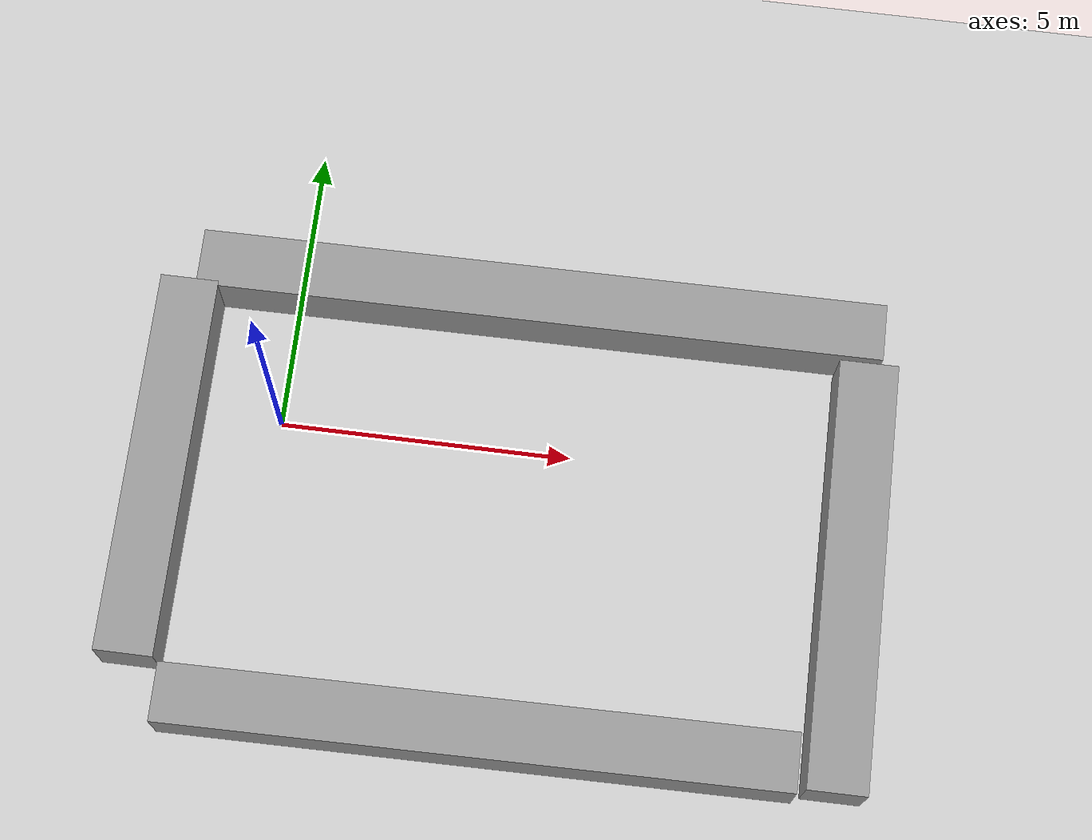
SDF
<sdf version="1.6">
 <world name="default">
  <light name="sun" type="directional">
   <pose>0 0 10 0 -0 0</pose>
   <diffuse>0.8 0.8 0.8 1</diffuse>
   <specular>0.2 0.2 0.2 1</specular>
   <attenuation>
    <range>1000</range>
    <constant>0.9</constant>
    <linear>0.01</linear>
    <quadratic>0.001</quadratic>
   </attenuation>
   <direction>-0.5 0.1 -0.9</direction>
  </light>
  <model name="ground_plane">
   <static>1</static>
   <link name="link">
    <collision name="collision">
     <geometry><plane><normal>0 0 1</normal><size>100 100</size></plane></geometry>
     <surface>
      <contact><collide_bitmask>65535</collide_bitmask></contact>
      <friction><ode><mu>100</mu><mu2>50</mu2></ode></friction>
     </surface>
    </collision>
    <visual name="visual">
     <cast_shadows>0</cast_shadows>
     <geometry><plane><normal>0 0 1</normal><size>100 100</size></plane></geometry>
     <material>
      <script><uri>file://media/materials/scripts/gazebo.material</uri><name>Gazebo/Grey</name></script>
     </material>
    </visual>
   </link>
  </model>
  <gravity>0 0 -9.8</gravity>
  <magnetic_field>6e-06 2.3e-05 -4.2e-05</magnetic_field>
  <atmosphere type="adiabatic"/>
  <physics name="default_physics" default="0" type="ode">
   <max_step_size>0.001</max_step_size>
   <real_time_factor>1</real_time_factor>
   <real_time_update_rate>1000</real_time_update_rate>
  </physics>
  <scene><ambient>0.4 0.4 0.4 1</ambient><background>0.7 0.7 0.7 1</background><shadows>1</shadows></scene>
  <audio><device>default</device></audio>
  <spherical_coordinates>
   <surface_model>EARTH_WGS84</surface_model>
   <latitude_deg>0</latitude_deg>
   <longitude_deg>0</longitude_deg>
   <elevation>0</elevation>
   <heading_deg>0</heading_deg>
  </spherical_coordinates>
  <model name="unit_box_0">
   <link name="link">
    <inertial>
     <mass>999</mass>
     <inertia><ixx>166.5</ixx><ixy>0</ixy><ixz>0</ixz><iyy>9287.28</iyy><iyz>0</iyz><izz>9287.28</izz></inertia>
    </inertial>
    <visual name="visual">
     <geometry><box><size>10.5147 1 1</size></box></geometry>
     <material>
      <script><name>Gazebo/Grey</name><uri>file://media/materials/scripts/gazebo.material</uri></script>
      <shader type="vertex"><normal_map>__default__</normal_map></shader>
      <ambient>0.3 0.3 0.3 1</ambient>
      <diffuse>0.7 0.7 0.7 1</diffuse>
      <specular>0.01 0.01 0.01 1</specular>
      <emissive>0 0 0 1</emissive>
     </material>
    </visual>
    <collision name="collision">
     <geometry><box><size>10.5147 1 1</size></box></geometry>
     <surface>
      <friction>
       <ode><mu>1</mu><mu2>1</mu2><fdir1>0 0 0</fdir1><slip1>0</slip1><slip2>0</slip2></ode>
       <torsional>
        <coefficient>1</coefficient>
        <patch_radius>0</patch_radius>
        <surface_radius>0</surface_radius>
        <use_patch_radius>1</use_patch_radius>
        <ode><slip>0</slip></ode>
       </torsional>
      </friction>
      <bounce><restitution_coefficient>0</restitution_coefficient><threshold>1e+06</threshold></bounce>
      <contact>
       <collide_without_contact>0</collide_without_contact>
       <collide_without_contact_bitmask>1</collide_without_contact_bitmask>
       <collide_bitmask>1</collide_bitmask>
       <ode>
        <soft_cfm>0</soft_cfm>
        <soft_erp>0.2</soft_erp>
        <kp>1e+13</kp>
        <kd>1</kd>
        <max_vel>0.01</max_vel>
        <min_depth>0</min_depth>
       </ode>
       <bullet>
        <split_impulse>1</split_impulse>
        <split_impulse_penetration_threshold>-0.01</split_impulse_penetration_threshold>
        <soft_cfm>0</soft_cfm>
        <soft_erp>0.2</soft_erp>
        <kp>1e+13</kp>
        <kd>1</kd>
       </bullet>
      </contact>
     </surface>
    </collision>
   </link>
   <static>1</static>
   <pose>3.99239 -4.98271 0.442995 -0.000138 -0.010134 0.010945</pose>
  </model>
  <model name="unit_box">
   <link name="link">
    <inertial>
     <mass>1</mass>
     <inertia>
      <ixx>0.166667</ixx>
      <ixy>0</ixy>
      <ixz>0</ixz>
      <iyy>0.166667</iyy>
      <iyz>0</iyz>
      <izz>0.166667</izz>
     </inertia>
    </inertial>
    <visual name="visual">
     <geometry><box><size>1 6.61529 1</size></box></geometry>
     <material>
      <script><name>Gazebo/Grey</name><uri>file://media/materials/scripts/gazebo.material</uri></script>
     </material>
    </visual>
    <collision name="collision">
     <geometry><box><size>1 6.61529 1</size></box></geometry>
     <surface>
      <friction>
       <ode><mu>1</mu><mu2>1</mu2><fdir1>0 0 0</fdir1><slip1>0</slip1><slip2>0</slip2></ode>
       <torsional>
        <coefficient>1</coefficient>
        <patch_radius>0</patch_radius>
        <surface_radius>0</surface_radius>
        <use_patch_radius>1</use_patch_radius>
        <ode><slip>0</slip></ode>
       </torsional>
      </friction>
      <bounce><restitution_coefficient>0</restitution_coefficient><threshold>1e+06</threshold></bounce>
      <contact>
       <collide_without_contact>0</collide_without_contact>
       <collide_without_contact_bitmask>1</collide_without_contact_bitmask>
       <collide_bitmask>1</collide_bitmask>
       <ode>
        <soft_cfm>0</soft_cfm>
        <soft_erp>0.2</soft_erp>
        <kp>1e+13</kp>
        <kd>1</kd>
        <max_vel>0.01</max_vel>
        <min_depth>0</min_depth>
       </ode>
       <bullet>
        <split_impulse>1</split_impulse>
        <split_impulse_penetration_threshold>-0.01</split_impulse_penetration_threshold>
        <soft_cfm>0</soft_cfm>
        <soft_erp>0.2</soft_erp>
        <kp>1e+13</kp>
        <kd>1</kd>
       </bullet>
      </contact>
     </surface>
    </collision>
   </link>
   <static>1</static>
   <pose>-1.84757 -1.19101 0.492589 0.002242 1e-06 -0.000315</pose>
  </model>
  <model name="unit_box_2">
   <link name="link">
    <inertial>
     <mass>1</mass>
     <inertia>
      <ixx>0.166667</ixx>
      <ixy>0</ixy>
      <ixz>0</ixz>
      <iyy>0.166667</iyy>
      <iyz>0</iyz>
      <izz>0.166667</izz>
     </inertia>
    </inertial>
    <visual name="visual">
     <geometry><box><size>1 7.34086 1</size></box></geometry>
     <material>
      <script><name>Gazebo/Grey</name><uri>file://media/materials/scripts/gazebo.material</uri></script>
     </material>
    </visual>
    <collision name="collision">
     <geometry><box><size>1 7.34086 1</size></box></geometry>
     <surface>
      <friction>
       <ode><mu>1</mu><mu2>1</mu2><fdir1>0 0 0</fdir1><slip1>0</slip1><slip2>0</slip2></ode>
       <torsional>
        <coefficient>1</coefficient>
        <patch_radius>0</patch_radius>
        <surface_radius>0</surface_radius>
        <use_patch_radius>1</use_patch_radius>
        <ode><slip>0</slip></ode>
       </torsional>
      </friction>
      <bounce><restitution_coefficient>0</restitution_coefficient><threshold>1e+06</threshold></bounce>
      <contact>
       <collide_without_contact>0</collide_without_contact>
       <collide_without_contact_bitmask>1</collide_without_contact_bitmask>
       <collide_bitmask>1</collide_bitmask>
       <ode>
        <soft_cfm>0</soft_cfm>
        <soft_erp>0.2</soft_erp>
        <kp>1e+13</kp>
        <kd>1</kd>
        <max_vel>0.01</max_vel>
        <min_depth>0</min_depth>
       </ode>
       <bullet>
        <split_impulse>1</split_impulse>
        <split_impulse_penetration_threshold>-0.01</split_impulse_penetration_threshold>
        <soft_cfm>0</soft_cfm>
        <soft_erp>0.2</soft_erp>
        <kp>1e+13</kp>
        <kd>1</kd>
       </bullet>
      </contact>
     </surface>
    </collision>
   </link>
   <static>1</static>
   <pose>9.87492 -1.66261 0.488371 0.003171 -3e-06 0.005109</pose>
  </model>
  <model name="unit_box_1">
   <link name="link">
    <inertial>
     <mass>1</mass>
     <inertia>
      <ixx>0.166667</ixx>
      <ixy>0</ixy>
      <ixz>0</ixz>
      <iyy>0.166667</iyy>
      <iyz>0</iyz>
      <izz>0.166667</izz>
     </inertia>
    </inertial>
    <visual name="visual">
     <geometry><box><size>11.8116 1 1</size></box></geometry>
     <material>
      <script><name>Gazebo/Grey</name><uri>file://media/materials/scripts/gazebo.material</uri></script>
     </material>
    </visual>
    <collision name="collision">
     <geometry><box><size>11.8116 1 1</size></box></geometry>
     <surface>
      <friction>
       <ode><mu>1</mu><mu2>1</mu2><fdir1>0 0 0</fdir1><slip1>0</slip1><slip2>0</slip2></ode>
       <torsional>
        <coefficient>1</coefficient>
        <patch_radius>0</patch_radius>
        <surface_radius>0</surface_radius>
        <use_patch_radius>1</use_patch_radius>
        <ode><slip>0</slip></ode>
       </torsional>
      </friction>
      <bounce><restitution_coefficient>0</restitution_coefficient><threshold>1e+06</threshold></bounce>
      <contact>
       <collide_without_contact>0</collide_without_contact>
       <collide_without_contact_bitmask>1</collide_without_contact_bitmask>
       <collide_bitmask>1</collide_bitmask>
       <ode>
        <soft_cfm>0</soft_cfm>
        <soft_erp>0.2</soft_erp>
        <kp>1e+13</kp>
        <kd>1</kd>
        <max_vel>0.01</max_vel>
        <min_depth>0</min_depth>
       </ode>
       <bullet>
        <split_impulse>1</split_impulse>
        <split_impulse_penetration_threshold>-0.01</split_impulse_penetration_threshold>
        <soft_cfm>0</soft_cfm>
        <soft_erp>0.2</soft_erp>
        <kp>1e+13</kp>
        <kd>1</kd>
       </bullet>
      </contact>
     </surface>
    </collision>
   </link>
   <static>1</static>
   <pose>4.17426 2.55981 0.498863 0.001267 0.000109 0.004672</pose>
  </model>
 </world>
</sdf>
